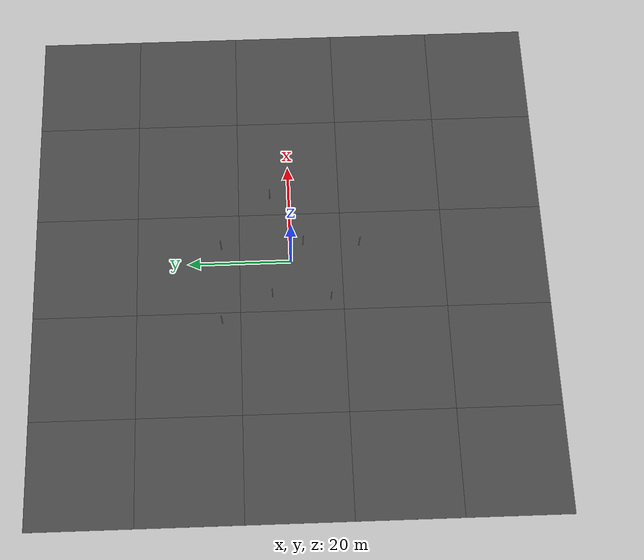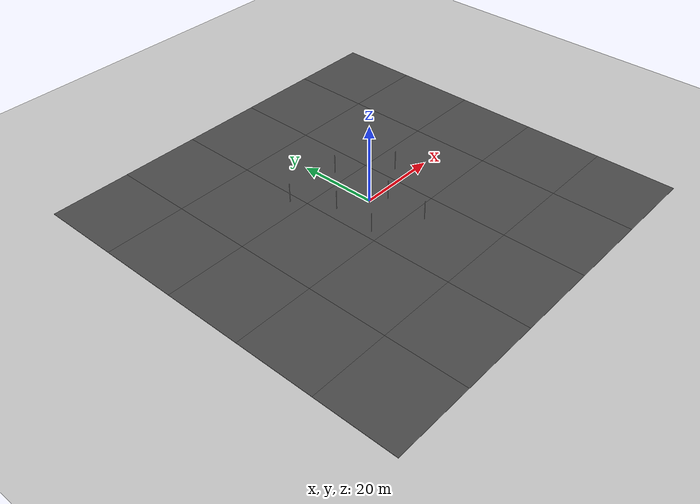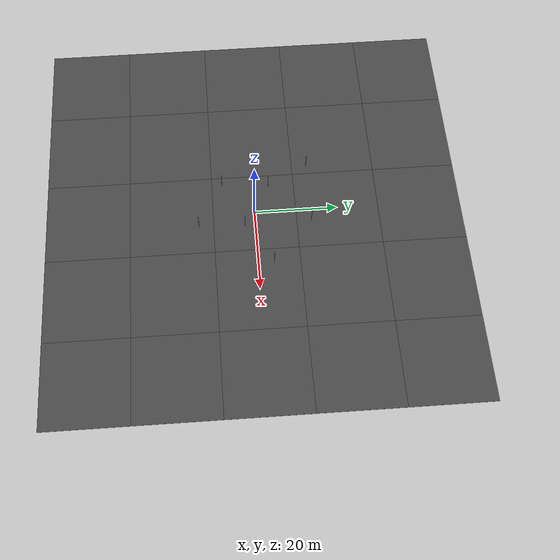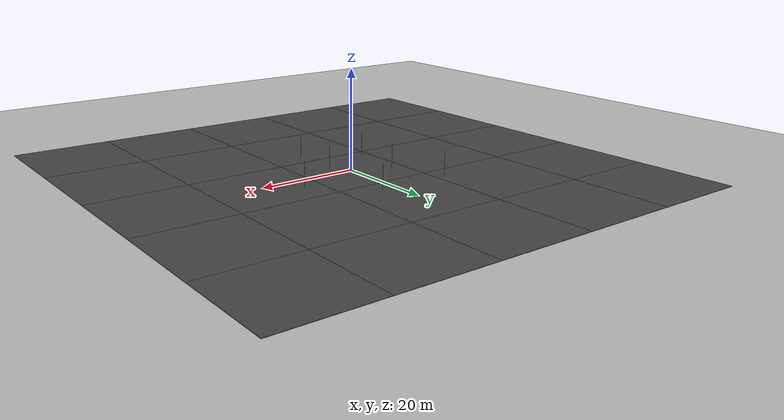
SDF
<sdf version="1.6">
 <world name="default">
  <light name="sun" type="directional">
   <pose>0 0 10 0 -0 0</pose>
   <diffuse>0.8 0.8 0.8 1</diffuse>
   <specular>0.2 0.2 0.2 1</specular>
   <attenuation>
    <range>1000</range>
    <constant>0.9</constant>
    <linear>0.01</linear>
    <quadratic>0.001</quadratic>
   </attenuation>
   <direction>-0.5 0.1 -0.9</direction>
  </light>
  <model name="ground_plane">
   <static>1</static>
   <link name="link">
    <collision name="collision">
     <geometry><plane><normal>0 0 1</normal><size>100 100</size></plane></geometry>
     <surface><friction><ode><mu>100</mu><mu2>50</mu2></ode></friction></surface>
    </collision>
    <visual name="visual">
     <cast_shadows>0</cast_shadows>
     <geometry><plane><normal>0 0 1</normal><size>100 100</size></plane></geometry>
     <material>
      <script><uri>file://media/materials/scripts/gazebo.material</uri><name>Gazebo/Grey</name></script>
     </material>
    </visual>
   </link>
  </model>
  <gravity>0 0 -9.8</gravity>
  <magnetic_field>6e-06 2.3e-05 -4.2e-05</magnetic_field>
  <atmosphere type="adiabatic"/>
  <physics name="default_physics" default="0" type="ode">
   <max_step_size>0.001</max_step_size>
   <real_time_factor>1</real_time_factor>
   <real_time_update_rate>1000</real_time_update_rate>
  </physics>
  <scene><ambient>0.4 0.4 0.4 1</ambient><background>0.7 0.7 0.7 1</background><shadows>1</shadows></scene>
  <spherical_coordinates>
   <surface_model>EARTH_WGS84</surface_model>
   <latitude_deg>0</latitude_deg>
   <longitude_deg>0</longitude_deg>
   <elevation>0</elevation>
   <heading_deg>0</heading_deg>
  </spherical_coordinates>
  <model name="asphalt_plane">
   <static>1</static>
   <link name="link">
    <collision name="collision"><geometry><box><size>20 20 0.1</size></box></geometry></collision>
    <visual name="visual">
     <cast_shadows>0</cast_shadows>
     <geometry><box><size>20 20 0.1</size></box></geometry>
     <material>
      <script>
       <uri>model://asphalt_plane/materials/scripts</uri>
       <uri>model://asphalt_plane/materials/textures</uri>
       <name>vrc/asphalt</name>
      </script>
     </material>
    </visual>
   </link>
  </model>
  <model name="asphalt_plane_clone">
   <static>1</static>
   <link name="link">
    <collision name="collision"><geometry><box><size>20 20 0.1</size></box></geometry></collision>
    <visual name="visual">
     <cast_shadows>0</cast_shadows>
     <geometry><box><size>20 20 0.1</size></box></geometry>
     <material>
      <script>
       <uri>model://asphalt_plane/materials/scripts</uri>
       <uri>model://asphalt_plane/materials/textures</uri>
       <name>vrc/asphalt</name>
      </script>
     </material>
    </visual>
   </link>
   <pose>0 -20 0 0 -0 0</pose>
  </model>
  <model name="asphalt_plane_clone_clone">
   <static>1</static>
   <link name="link">
    <collision name="collision"><geometry><box><size>20 20 0.1</size></box></geometry></collision>
    <visual name="visual">
     <cast_shadows>0</cast_shadows>
     <geometry><box><size>20 20 0.1</size></box></geometry>
     <material>
      <script>
       <uri>model://asphalt_plane/materials/scripts</uri>
       <uri>model://asphalt_plane/materials/textures</uri>
       <name>vrc/asphalt</name>
      </script>
     </material>
    </visual>
   </link>
   <pose>-20 0 0 0 -0 0</pose>
  </model>
  <model name="asphalt_plane_clone_clone_0">
   <static>1</static>
   <link name="link">
    <collision name="collision"><geometry><box><size>20 20 0.1</size></box></geometry></collision>
    <visual name="visual">
     <cast_shadows>0</cast_shadows>
     <geometry><box><size>20 20 0.1</size></box></geometry>
     <material>
      <script>
       <uri>model://asphalt_plane/materials/scripts</uri>
       <uri>model://asphalt_plane/materials/textures</uri>
       <name>vrc/asphalt</name>
      </script>
     </material>
    </visual>
   </link>
   <pose>-20 -20 0 0 -0 0</pose>
  </model>
  <model name="asphalt_plane_clone_clone_1">
   <static>1</static>
   <link name="link">
    <collision name="collision"><geometry><box><size>20 20 0.1</size></box></geometry></collision>
    <visual name="visual">
     <cast_shadows>0</cast_shadows>
     <geometry><box><size>20 20 0.1</size></box></geometry>
     <material>
      <script>
       <uri>model://asphalt_plane/materials/scripts</uri>
       <uri>model://asphalt_plane/materials/textures</uri>
       <name>vrc/asphalt</name>
      </script>
     </material>
    </visual>
   </link>
   <pose>20 -20 0 0 -0 0</pose>
  </model>
  <model name="asphalt_plane_clone_clone_2">
   <static>1</static>
   <link name="link">
    <collision name="collision"><geometry><box><size>20 20 0.1</size></box></geometry></collision>
    <visual name="visual">
     <cast_shadows>0</cast_shadows>
     <geometry><box><size>20 20 0.1</size></box></geometry>
     <material>
      <script>
       <uri>model://asphalt_plane/materials/scripts</uri>
       <uri>model://asphalt_plane/materials/textures</uri>
       <name>vrc/asphalt</name>
      </script>
     </material>
    </visual>
   </link>
   <pose>20 0 0 0 -0 0</pose>
  </model>
  <model name="asphalt_plane_clone_clone_3">
   <static>1</static>
   <link name="link">
    <collision name="collision"><geometry><box><size>20 20 0.1</size></box></geometry></collision>
    <visual name="visual">
     <cast_shadows>0</cast_shadows>
     <geometry><box><size>20 20 0.1</size></box></geometry>
     <material>
      <script>
       <uri>model://asphalt_plane/materials/scripts</uri>
       <uri>model://asphalt_plane/materials/textures</uri>
       <name>vrc/asphalt</name>
      </script>
     </material>
    </visual>
   </link>
   <pose>20 20 0 0 -0 0</pose>
  </model>
  <model name="asphalt_plane_clone_clone_4">
   <static>1</static>
   <link name="link">
    <collision name="collision"><geometry><box><size>20 20 0.1</size></box></geometry></collision>
    <visual name="visual">
     <cast_shadows>0</cast_shadows>
     <geometry><box><size>20 20 0.1</size></box></geometry>
     <material>
      <script>
       <uri>model://asphalt_plane/materials/scripts</uri>
       <uri>model://asphalt_plane/materials/textures</uri>
       <name>vrc/asphalt</name>
      </script>
     </material>
    </visual>
   </link>
   <pose>0 20 0 0 -0 0</pose>
  </model>
  <model name="asphalt_plane_clone_clone_5">
   <static>1</static>
   <link name="link">
    <collision name="collision"><geometry><box><size>20 20 0.1</size></box></geometry></collision>
    <visual name="visual">
     <cast_shadows>0</cast_shadows>
     <geometry><box><size>20 20 0.1</size></box></geometry>
     <material>
      <script>
       <uri>model://asphalt_plane/materials/scripts</uri>
       <uri>model://asphalt_plane/materials/textures</uri>
       <name>vrc/asphalt</name>
      </script>
     </material>
    </visual>
   </link>
   <pose>-20 20 0 0 -0 0</pose>
  </model>
  <model name="asphalt_plane_clone_clone_6">
   <static>1</static>
   <link name="link">
    <collision name="collision"><geometry><box><size>20 20 0.1</size></box></geometry></collision>
    <visual name="visual">
     <cast_shadows>0</cast_shadows>
     <geometry><box><size>20 20 0.1</size></box></geometry>
     <material>
      <script>
       <uri>model://asphalt_plane/materials/scripts</uri>
       <uri>model://asphalt_plane/materials/textures</uri>
       <name>vrc/asphalt</name>
      </script>
     </material>
    </visual>
   </link>
   <pose>0 -40 0 0 -0 0</pose>
  </model>
  <model name="asphalt_plane_clone_clone_7">
   <static>1</static>
   <link name="link">
    <collision name="collision"><geometry><box><size>20 20 0.1</size></box></geometry></collision>
    <visual name="visual">
     <cast_shadows>0</cast_shadows>
     <geometry><box><size>20 20 0.1</size></box></geometry>
     <material>
      <script>
       <uri>model://asphalt_plane/materials/scripts</uri>
       <uri>model://asphalt_plane/materials/textures</uri>
       <name>vrc/asphalt</name>
      </script>
     </material>
    </visual>
   </link>
   <pose>-20 -40 0 0 -0 0</pose>
  </model>
  <model name="asphalt_plane_clone_clone_8">
   <static>1</static>
   <link name="link">
    <collision name="collision"><geometry><box><size>20 20 0.1</size></box></geometry></collision>
    <visual name="visual">
     <cast_shadows>0</cast_shadows>
     <geometry><box><size>20 20 0.1</size></box></geometry>
     <material>
      <script>
       <uri>model://asphalt_plane/materials/scripts</uri>
       <uri>model://asphalt_plane/materials/textures</uri>
       <name>vrc/asphalt</name>
      </script>
     </material>
    </visual>
   </link>
   <pose>-40 -40 0 0 -0 0</pose>
  </model>
  <model name="asphalt_plane_clone_clone_9">
   <static>1</static>
   <link name="link">
    <collision name="collision"><geometry><box><size>20 20 0.1</size></box></geometry></collision>
    <visual name="visual">
     <cast_shadows>0</cast_shadows>
     <geometry><box><size>20 20 0.1</size></box></geometry>
     <material>
      <script>
       <uri>model://asphalt_plane/materials/scripts</uri>
       <uri>model://asphalt_plane/materials/textures</uri>
       <name>vrc/asphalt</name>
      </script>
     </material>
    </visual>
   </link>
   <pose>-40 -20 0 0 -0 0</pose>
  </model>
  <model name="asphalt_plane_clone_clone_10">
   <static>1</static>
   <link name="link">
    <collision name="collision"><geometry><box><size>20 20 0.1</size></box></geometry></collision>
    <visual name="visual">
     <cast_shadows>0</cast_shadows>
     <geometry><box><size>20 20 0.1</size></box></geometry>
     <material>
      <script>
       <uri>model://asphalt_plane/materials/scripts</uri>
       <uri>model://asphalt_plane/materials/textures</uri>
       <name>vrc/asphalt</name>
      </script>
     </material>
    </visual>
   </link>
   <pose>-40 0 0 0 -0 0</pose>
  </model>
  <model name="asphalt_plane_clone_clone_11">
   <static>1</static>
   <link name="link">
    <collision name="collision"><geometry><box><size>20 20 0.1</size></box></geometry></collision>
    <visual name="visual">
     <cast_shadows>0</cast_shadows>
     <geometry><box><size>20 20 0.1</size></box></geometry>
     <material>
      <script>
       <uri>model://asphalt_plane/materials/scripts</uri>
       <uri>model://asphalt_plane/materials/textures</uri>
       <name>vrc/asphalt</name>
      </script>
     </material>
    </visual>
   </link>
   <pose>-40 20 0 0 -0 0</pose>
  </model>
  <model name="asphalt_plane_clone_clone_12">
   <static>1</static>
   <link name="link">
    <collision name="collision"><geometry><box><size>20 20 0.1</size></box></geometry></collision>
    <visual name="visual">
     <cast_shadows>0</cast_shadows>
     <geometry><box><size>20 20 0.1</size></box></geometry>
     <material>
      <script>
       <uri>model://asphalt_plane/materials/scripts</uri>
       <uri>model://asphalt_plane/materials/textures</uri>
       <name>vrc/asphalt</name>
      </script>
     </material>
    </visual>
   </link>
   <pose>-40 40 0 0 -0 0</pose>
  </model>
  <model name="asphalt_plane_clone_clone_13">
   <static>1</static>
   <link name="link">
    <collision name="collision"><geometry><box><size>20 20 0.1</size></box></geometry></collision>
    <visual name="visual">
     <cast_shadows>0</cast_shadows>
     <geometry><box><size>20 20 0.1</size></box></geometry>
     <material>
      <script>
       <uri>model://asphalt_plane/materials/scripts</uri>
       <uri>model://asphalt_plane/materials/textures</uri>
       <name>vrc/asphalt</name>
      </script>
     </material>
    </visual>
   </link>
   <pose>-20 40 0 0 -0 0</pose>
  </model>
  <model name="asphalt_plane_clone_clone_14">
   <static>1</static>
   <link name="link">
    <collision name="collision"><geometry><box><size>20 20 0.1</size></box></geometry></collision>
    <visual name="visual">
     <cast_shadows>0</cast_shadows>
     <geometry><box><size>20 20 0.1</size></box></geometry>
     <material>
      <script>
       <uri>model://asphalt_plane/materials/scripts</uri>
       <uri>model://asphalt_plane/materials/textures</uri>
       <name>vrc/asphalt</name>
      </script>
     </material>
    </visual>
   </link>
   <pose>0 40 0 0 -0 0</pose>
  </model>
  <model name="asphalt_plane_clone_clone_15">
   <static>1</static>
   <link name="link">
    <collision name="collision"><geometry><box><size>20 20 0.1</size></box></geometry></collision>
    <visual name="visual">
     <cast_shadows>0</cast_shadows>
     <geometry><box><size>20 20 0.1</size></box></geometry>
     <material>
      <script>
       <uri>model://asphalt_plane/materials/scripts</uri>
       <uri>model://asphalt_plane/materials/textures</uri>
       <name>vrc/asphalt</name>
      </script>
     </material>
    </visual>
   </link>
   <pose>20 40 0 0 -0 0</pose>
  </model>
  <model name="asphalt_plane_clone_clone_16">
   <static>1</static>
   <link name="link">
    <collision name="collision"><geometry><box><size>20 20 0.1</size></box></geometry></collision>
    <visual name="visual">
     <cast_shadows>0</cast_shadows>
     <geometry><box><size>20 20 0.1</size></box></geometry>
     <material>
      <script>
       <uri>model://asphalt_plane/materials/scripts</uri>
       <uri>model://asphalt_plane/materials/textures</uri>
       <name>vrc/asphalt</name>
      </script>
     </material>
    </visual>
   </link>
   <pose>40 40 0 0 -0 0</pose>
  </model>
  <model name="asphalt_plane_clone_clone_17">
   <static>1</static>
   <link name="link">
    <collision name="collision"><geometry><box><size>20 20 0.1</size></box></geometry></collision>
    <visual name="visual">
     <cast_shadows>0</cast_shadows>
     <geometry><box><size>20 20 0.1</size></box></geometry>
     <material>
      <script>
       <uri>model://asphalt_plane/materials/scripts</uri>
       <uri>model://asphalt_plane/materials/textures</uri>
       <name>vrc/asphalt</name>
      </script>
     </material>
    </visual>
   </link>
   <pose>40 20 0 0 -0 0</pose>
  </model>
  <model name="asphalt_plane_clone_clone_18">
   <static>1</static>
   <link name="link">
    <collision name="collision"><geometry><box><size>20 20 0.1</size></box></geometry></collision>
    <visual name="visual">
     <cast_shadows>0</cast_shadows>
     <geometry><box><size>20 20 0.1</size></box></geometry>
     <material>
      <script>
       <uri>model://asphalt_plane/materials/scripts</uri>
       <uri>model://asphalt_plane/materials/textures</uri>
       <name>vrc/asphalt</name>
      </script>
     </material>
    </visual>
   </link>
   <pose>40 0 0 0 -0 0</pose>
  </model>
  <model name="asphalt_plane_clone_clone_19">
   <static>1</static>
   <link name="link">
    <collision name="collision"><geometry><box><size>20 20 0.1</size></box></geometry></collision>
    <visual name="visual">
     <cast_shadows>0</cast_shadows>
     <geometry><box><size>20 20 0.1</size></box></geometry>
     <material>
      <script>
       <uri>model://asphalt_plane/materials/scripts</uri>
       <uri>model://asphalt_plane/materials/textures</uri>
       <name>vrc/asphalt</name>
      </script>
     </material>
    </visual>
   </link>
   <pose>40 -20 0 0 -0 0</pose>
  </model>
  <model name="asphalt_plane_clone_clone_20">
   <static>1</static>
   <link name="link">
    <collision name="collision"><geometry><box><size>20 20 0.1</size></box></geometry></collision>
    <visual name="visual">
     <cast_shadows>0</cast_shadows>
     <geometry><box><size>20 20 0.1</size></box></geometry>
     <material>
      <script>
       <uri>model://asphalt_plane/materials/scripts</uri>
       <uri>model://asphalt_plane/materials/textures</uri>
       <name>vrc/asphalt</name>
      </script>
     </material>
    </visual>
   </link>
   <pose>40 -40 0 0 -0 0</pose>
  </model>
  <model name="asphalt_plane_clone_clone_21">
   <static>1</static>
   <link name="link">
    <collision name="collision"><geometry><box><size>20 20 0.1</size></box></geometry></collision>
    <visual name="visual">
     <cast_shadows>0</cast_shadows>
     <geometry><box><size>20 20 0.1</size></box></geometry>
     <material>
      <script>
       <uri>model://asphalt_plane/materials/scripts</uri>
       <uri>model://asphalt_plane/materials/textures</uri>
       <name>vrc/asphalt</name>
      </script>
     </material>
    </visual>
   </link>
   <pose>20 -40 0 0 -0 0</pose>
  </model>
  <model name="unit_cylinder_green_0">
   <link name="link">
    <inertial>
     <mass>0.586514</mass>
     <inertia>
      <ixx>1.21622</ixx>
      <ixy>0</ixy>
      <ixz>0</ixz>
      <iyy>1.21622</iyy>
      <iyz>0</iyz>
      <izz>0.00190539</izz>
     </inertia>
    </inertial>
    <pose>0 0 2.82239 0 -0 0</pose>
    <visual name="visual">
     <geometry><cylinder><radius>0.080606</radius><length>4.98641</length></cylinder></geometry>
     <material>
      <script><name>Gazebo/Grey</name><uri>file://media/materials/scripts/gazebo.material</uri></script>
      <shader type="pixel"><normal_map>__default__</normal_map></shader>
      <ambient>0.85 0.85 0.85 0</ambient>
      <diffuse>0.7 0.7 0.7 1</diffuse>
      <specular>0.01 0.01 0.01 1</specular>
      <emissive>0 0 0 1</emissive>
     </material>
    </visual>
    <collision name="collision">
     <geometry><cylinder><radius>0.080606</radius><length>4.98641</length></cylinder></geometry>
     <surface>
      <friction>
       <ode><mu>1</mu><mu2>1</mu2><fdir1>0 0 0</fdir1><slip1>0</slip1><slip2>0</slip2></ode>
       <torsional>
        <coefficient>1</coefficient>
        <patch_radius>0</patch_radius>
        <surface_radius>0</surface_radius>
        <use_patch_radius>1</use_patch_radius>
        <ode><slip>0</slip></ode>
       </torsional>
      </friction>
      <bounce><restitution_coefficient>0</restitution_coefficient><threshold>1e+06</threshold></bounce>
      <contact>
       <collide_without_contact>0</collide_without_contact>
       <collide_without_contact_bitmask>1</collide_without_contact_bitmask>
       <collide_bitmask>1</collide_bitmask>
       <ode>
        <soft_cfm>0</soft_cfm>
        <soft_erp>0.2</soft_erp>
        <kp>1e+13</kp>
        <kd>1</kd>
        <max_vel>0.01</max_vel>
        <min_depth>0</min_depth>
       </ode>
       <bullet>
        <split_impulse>1</split_impulse>
        <split_impulse_penetration_threshold>-0.01</split_impulse_penetration_threshold>
        <soft_cfm>0</soft_cfm>
        <soft_erp>0.2</soft_erp>
        <kp>1e+13</kp>
        <kd>1</kd>
       </bullet>
      </contact>
     </surface>
    </collision>
   </link>
   <static>1</static>
   <pose>3.5 -2.5 -0.28611 0 -0 0</pose>
  </model>
  <model name="unit_cylinder_green_0_clone">
   <link name="link">
    <inertial>
     <mass>0.586514</mass>
     <inertia>
      <ixx>1.21622</ixx>
      <ixy>0</ixy>
      <ixz>0</ixz>
      <iyy>1.21622</iyy>
      <iyz>0</iyz>
      <izz>0.00190539</izz>
     </inertia>
    </inertial>
    <pose>0 0 2.82239 0 -0 0</pose>
    <visual name="visual">
     <geometry><cylinder><radius>0.080606</radius><length>4.98641</length></cylinder></geometry>
     <material>
      <script><name>Gazebo/Grey</name><uri>file://media/materials/scripts/gazebo.material</uri></script>
      <shader type="pixel"><normal_map>__default__</normal_map></shader>
      <ambient>0.85 0.85 0.85 0</ambient>
      <diffuse>0.7 0.7 0.7 1</diffuse>
      <specular>0.01 0.01 0.01 1</specular>
      <emissive>0 0 0 1</emissive>
     </material>
    </visual>
    <collision name="collision">
     <geometry><cylinder><radius>0.080606</radius><length>4.98641</length></cylinder></geometry>
     <surface>
      <friction>
       <ode><mu>1</mu><mu2>1</mu2><fdir1>0 0 0</fdir1><slip1>0</slip1><slip2>0</slip2></ode>
       <torsional>
        <coefficient>1</coefficient>
        <patch_radius>0</patch_radius>
        <surface_radius>0</surface_radius>
        <use_patch_radius>1</use_patch_radius>
        <ode><slip>0</slip></ode>
       </torsional>
      </friction>
      <bounce><restitution_coefficient>0</restitution_coefficient><threshold>1e+06</threshold></bounce>
      <contact>
       <collide_without_contact>0</collide_without_contact>
       <collide_without_contact_bitmask>1</collide_without_contact_bitmask>
       <collide_bitmask>1</collide_bitmask>
       <ode>
        <soft_cfm>0</soft_cfm>
        <soft_erp>0.2</soft_erp>
        <kp>1e+13</kp>
        <kd>1</kd>
        <max_vel>0.01</max_vel>
        <min_depth>0</min_depth>
       </ode>
       <bullet>
        <split_impulse>1</split_impulse>
        <split_impulse_penetration_threshold>-0.01</split_impulse_penetration_threshold>
        <soft_cfm>0</soft_cfm>
        <soft_erp>0.2</soft_erp>
        <kp>1e+13</kp>
        <kd>1</kd>
       </bullet>
      </contact>
     </surface>
    </collision>
   </link>
   <static>1</static>
   <pose>3 -13.5 -0.28611 0 -0 0</pose>
  </model>
  <model name="unit_cylinder_green_0_clone_0">
   <link name="link">
    <inertial>
     <mass>0.586514</mass>
     <inertia>
      <ixx>1.21622</ixx>
      <ixy>0</ixy>
      <ixz>0</ixz>
      <iyy>1.21622</iyy>
      <iyz>0</iyz>
      <izz>0.00190539</izz>
     </inertia>
    </inertial>
    <pose>0 0 2.82239 0 -0 0</pose>
    <visual name="visual">
     <geometry><cylinder><radius>0.080606</radius><length>4.98641</length></cylinder></geometry>
     <material>
      <script><name>Gazebo/Grey</name><uri>file://media/materials/scripts/gazebo.material</uri></script>
      <shader type="pixel"><normal_map>__default__</normal_map></shader>
      <ambient>0.85 0.85 0.85 0</ambient>
      <diffuse>0.7 0.7 0.7 1</diffuse>
      <specular>0.01 0.01 0.01 1</specular>
      <emissive>0 0 0 1</emissive>
     </material>
    </visual>
    <collision name="collision">
     <geometry><cylinder><radius>0.080606</radius><length>4.98641</length></cylinder></geometry>
     <surface>
      <friction>
       <ode><mu>1</mu><mu2>1</mu2><fdir1>0 0 0</fdir1><slip1>0</slip1><slip2>0</slip2></ode>
       <torsional>
        <coefficient>1</coefficient>
        <patch_radius>0</patch_radius>
        <surface_radius>0</surface_radius>
        <use_patch_radius>1</use_patch_radius>
        <ode><slip>0</slip></ode>
       </torsional>
      </friction>
      <bounce><restitution_coefficient>0</restitution_coefficient><threshold>1e+06</threshold></bounce>
      <contact>
       <collide_without_contact>0</collide_without_contact>
       <collide_without_contact_bitmask>1</collide_without_contact_bitmask>
       <collide_bitmask>1</collide_bitmask>
       <ode>
        <soft_cfm>0</soft_cfm>
        <soft_erp>0.2</soft_erp>
        <kp>1e+13</kp>
        <kd>1</kd>
        <max_vel>0.01</max_vel>
        <min_depth>0</min_depth>
       </ode>
       <bullet>
        <split_impulse>1</split_impulse>
        <split_impulse_penetration_threshold>-0.01</split_impulse_penetration_threshold>
        <soft_cfm>0</soft_cfm>
        <soft_erp>0.2</soft_erp>
        <kp>1e+13</kp>
        <kd>1</kd>
       </bullet>
      </contact>
     </surface>
    </collision>
   </link>
   <static>1</static>
   <pose>-8 -7.5 -0.28611 0 -0 0</pose>
  </model>
  <model name="unit_cylinder_green_0_clone_1">
   <link name="link">
    <inertial>
     <mass>0.586514</mass>
     <inertia>
      <ixx>1.21622</ixx>
      <ixy>0</ixy>
      <ixz>0</ixz>
      <iyy>1.21622</iyy>
      <iyz>0</iyz>
      <izz>0.00190539</izz>
     </inertia>
    </inertial>
    <pose>0 0 2.82239 0 -0 0</pose>
    <visual name="visual">
     <geometry><cylinder><radius>0.080606</radius><length>4.98641</length></cylinder></geometry>
     <material>
      <script><name>Gazebo/Grey</name><uri>file://media/materials/scripts/gazebo.material</uri></script>
      <shader type="pixel"><normal_map>__default__</normal_map></shader>
      <ambient>0.85 0.85 0.85 0</ambient>
      <diffuse>0.7 0.7 0.7 1</diffuse>
      <specular>0.01 0.01 0.01 1</specular>
      <emissive>0 0 0 1</emissive>
     </material>
    </visual>
    <collision name="collision">
     <geometry><cylinder><radius>0.080606</radius><length>4.98641</length></cylinder></geometry>
     <surface>
      <friction>
       <ode><mu>1</mu><mu2>1</mu2><fdir1>0 0 0</fdir1><slip1>0</slip1><slip2>0</slip2></ode>
       <torsional>
        <coefficient>1</coefficient>
        <patch_radius>0</patch_radius>
        <surface_radius>0</surface_radius>
        <use_patch_radius>1</use_patch_radius>
        <ode><slip>0</slip></ode>
       </torsional>
      </friction>
      <bounce><restitution_coefficient>0</restitution_coefficient><threshold>1e+06</threshold></bounce>
      <contact>
       <collide_without_contact>0</collide_without_contact>
       <collide_without_contact_bitmask>1</collide_without_contact_bitmask>
       <collide_bitmask>1</collide_bitmask>
       <ode>
        <soft_cfm>0</soft_cfm>
        <soft_erp>0.2</soft_erp>
        <kp>1e+13</kp>
        <kd>1</kd>
        <max_vel>0.01</max_vel>
        <min_depth>0</min_depth>
       </ode>
       <bullet>
        <split_impulse>1</split_impulse>
        <split_impulse_penetration_threshold>-0.01</split_impulse_penetration_threshold>
        <soft_cfm>0</soft_cfm>
        <soft_erp>0.2</soft_erp>
        <kp>1e+13</kp>
        <kd>1</kd>
       </bullet>
      </contact>
     </surface>
    </collision>
   </link>
   <static>1</static>
   <pose>-7 3.75 -0.28611 0 -0 0</pose>
  </model>
  <model name="unit_cylinder_green_0_clone_2">
   <link name="link">
    <inertial>
     <mass>0.586514</mass>
     <inertia>
      <ixx>1.21622</ixx>
      <ixy>0</ixy>
      <ixz>0</ixz>
      <iyy>1.21622</iyy>
      <iyz>0</iyz>
      <izz>0.00190539</izz>
     </inertia>
    </inertial>
    <pose>0 0 2.82239 0 -0 0</pose>
    <visual name="visual">
     <geometry><cylinder><radius>0.080606</radius><length>4.98641</length></cylinder></geometry>
     <material>
      <script><name>Gazebo/Grey</name><uri>file://media/materials/scripts/gazebo.material</uri></script>
      <shader type="pixel"><normal_map>__default__</normal_map></shader>
      <ambient>0.85 0.85 0.85 0</ambient>
      <diffuse>0.7 0.7 0.7 1</diffuse>
      <specular>0.01 0.01 0.01 1</specular>
      <emissive>0 0 0 1</emissive>
     </material>
    </visual>
    <collision name="collision">
     <geometry><cylinder><radius>0.080606</radius><length>4.98641</length></cylinder></geometry>
     <surface>
      <friction>
       <ode><mu>1</mu><mu2>1</mu2><fdir1>0 0 0</fdir1><slip1>0</slip1><slip2>0</slip2></ode>
       <torsional>
        <coefficient>1</coefficient>
        <patch_radius>0</patch_radius>
        <surface_radius>0</surface_radius>
        <use_patch_radius>1</use_patch_radius>
        <ode><slip>0</slip></ode>
       </torsional>
      </friction>
      <bounce><restitution_coefficient>0</restitution_coefficient><threshold>1e+06</threshold></bounce>
      <contact>
       <collide_without_contact>0</collide_without_contact>
       <collide_without_contact_bitmask>1</collide_without_contact_bitmask>
       <collide_bitmask>1</collide_bitmask>
       <ode>
        <soft_cfm>0</soft_cfm>
        <soft_erp>0.2</soft_erp>
        <kp>1e+13</kp>
        <kd>1</kd>
        <max_vel>0.01</max_vel>
        <min_depth>0</min_depth>
       </ode>
       <bullet>
        <split_impulse>1</split_impulse>
        <split_impulse_penetration_threshold>-0.01</split_impulse_penetration_threshold>
        <soft_cfm>0</soft_cfm>
        <soft_erp>0.2</soft_erp>
        <kp>1e+13</kp>
        <kd>1</kd>
       </bullet>
      </contact>
     </surface>
    </collision>
   </link>
   <static>1</static>
   <pose>-12 13.5 -0.28611 0 -0 0</pose>
  </model>
  <model name="unit_cylinder_green_0_clone_3">
   <link name="link">
    <inertial>
     <mass>0.586514</mass>
     <inertia>
      <ixx>1.21622</ixx>
      <ixy>0</ixy>
      <ixz>0</ixz>
      <iyy>1.21622</iyy>
      <iyz>0</iyz>
      <izz>0.00190539</izz>
     </inertia>
    </inertial>
    <pose>0 0 2.82239 0 -0 0</pose>
    <visual name="visual">
     <geometry><cylinder><radius>0.080606</radius><length>4.98641</length></cylinder></geometry>
     <material>
      <script><name>Gazebo/Grey</name><uri>file://media/materials/scripts/gazebo.material</uri></script>
      <shader type="pixel"><normal_map>__default__</normal_map></shader>
      <ambient>0.85 0.85 0.85 0</ambient>
      <diffuse>0.7 0.7 0.7 1</diffuse>
      <specular>0.01 0.01 0.01 1</specular>
      <emissive>0 0 0 1</emissive>
     </material>
    </visual>
    <collision name="collision">
     <geometry><cylinder><radius>0.080606</radius><length>4.98641</length></cylinder></geometry>
     <surface>
      <friction>
       <ode><mu>1</mu><mu2>1</mu2><fdir1>0 0 0</fdir1><slip1>0</slip1><slip2>0</slip2></ode>
       <torsional>
        <coefficient>1</coefficient>
        <patch_radius>0</patch_radius>
        <surface_radius>0</surface_radius>
        <use_patch_radius>1</use_patch_radius>
        <ode><slip>0</slip></ode>
       </torsional>
      </friction>
      <bounce><restitution_coefficient>0</restitution_coefficient><threshold>1e+06</threshold></bounce>
      <contact>
       <collide_without_contact>0</collide_without_contact>
       <collide_without_contact_bitmask>1</collide_without_contact_bitmask>
       <collide_bitmask>1</collide_bitmask>
       <ode>
        <soft_cfm>0</soft_cfm>
        <soft_erp>0.2</soft_erp>
        <kp>1e+13</kp>
        <kd>1</kd>
        <max_vel>0.01</max_vel>
        <min_depth>0</min_depth>
       </ode>
       <bullet>
        <split_impulse>1</split_impulse>
        <split_impulse_penetration_threshold>-0.01</split_impulse_penetration_threshold>
        <soft_cfm>0</soft_cfm>
        <soft_erp>0.2</soft_erp>
        <kp>1e+13</kp>
        <kd>1</kd>
       </bullet>
      </contact>
     </surface>
    </collision>
   </link>
   <static>1</static>
   <pose>13.5 3.75 -0.28611 0 -0 0</pose>
  </model>
  <model name="unit_cylinder_green_0_clone_4">
   <link name="link">
    <inertial>
     <mass>0.586514</mass>
     <inertia>
      <ixx>1.21622</ixx>
      <ixy>0</ixy>
      <ixz>0</ixz>
      <iyy>1.21622</iyy>
      <iyz>0</iyz>
      <izz>0.00190539</izz>
     </inertia>
    </inertial>
    <pose>0 0 2.82239 0 -0 0</pose>
    <visual name="visual">
     <geometry><cylinder><radius>0.080606</radius><length>4.98641</length></cylinder></geometry>
     <material>
      <script><name>Gazebo/Grey</name><uri>file://media/materials/scripts/gazebo.material</uri></script>
      <shader type="pixel"><normal_map>__default__</normal_map></shader>
      <ambient>0.85 0.85 0.85 0</ambient>
      <diffuse>0.7 0.7 0.7 1</diffuse>
      <specular>0.01 0.01 0.01 1</specular>
      <emissive>0 0 0 1</emissive>
     </material>
    </visual>
    <collision name="collision">
     <geometry><cylinder><radius>0.080606</radius><length>4.98641</length></cylinder></geometry>
     <surface>
      <friction>
       <ode><mu>1</mu><mu2>1</mu2><fdir1>0 0 0</fdir1><slip1>0</slip1><slip2>0</slip2></ode>
       <torsional>
        <coefficient>1</coefficient>
        <patch_radius>0</patch_radius>
        <surface_radius>0</surface_radius>
        <use_patch_radius>1</use_patch_radius>
        <ode><slip>0</slip></ode>
       </torsional>
      </friction>
      <bounce><restitution_coefficient>0</restitution_coefficient><threshold>1e+06</threshold></bounce>
      <contact>
       <collide_without_contact>0</collide_without_contact>
       <collide_without_contact_bitmask>1</collide_without_contact_bitmask>
       <collide_bitmask>1</collide_bitmask>
       <ode>
        <soft_cfm>0</soft_cfm>
        <soft_erp>0.2</soft_erp>
        <kp>1e+13</kp>
        <kd>1</kd>
        <max_vel>0.01</max_vel>
        <min_depth>0</min_depth>
       </ode>
       <bullet>
        <split_impulse>1</split_impulse>
        <split_impulse_penetration_threshold>-0.01</split_impulse_penetration_threshold>
        <soft_cfm>0</soft_cfm>
        <soft_erp>0.2</soft_erp>
        <kp>1e+13</kp>
        <kd>1</kd>
       </bullet>
      </contact>
     </surface>
    </collision>
   </link>
   <static>1</static>
   <pose>3 13.5 -0.28611 0 -0 0</pose>
  </model>
 </world>
</sdf>
